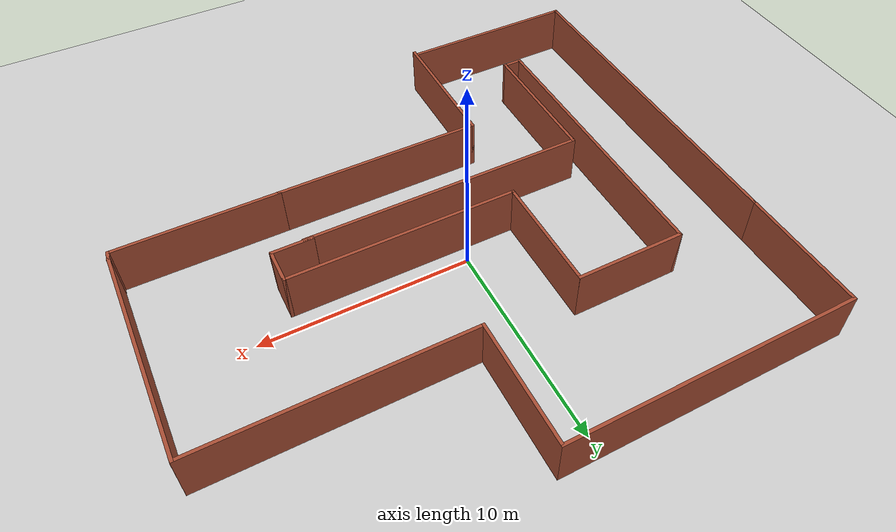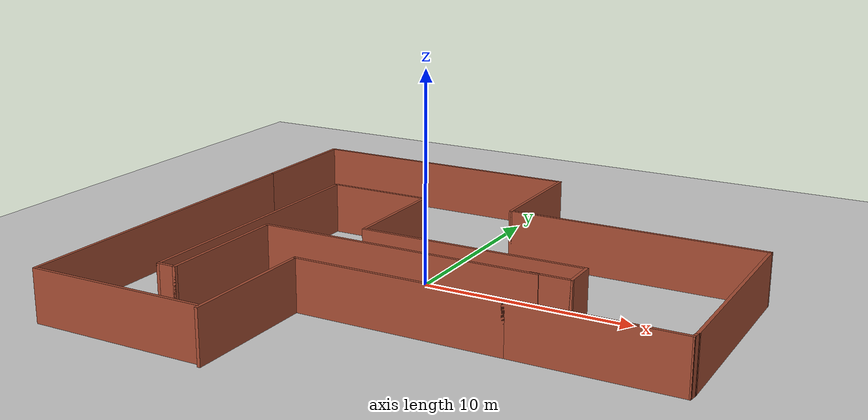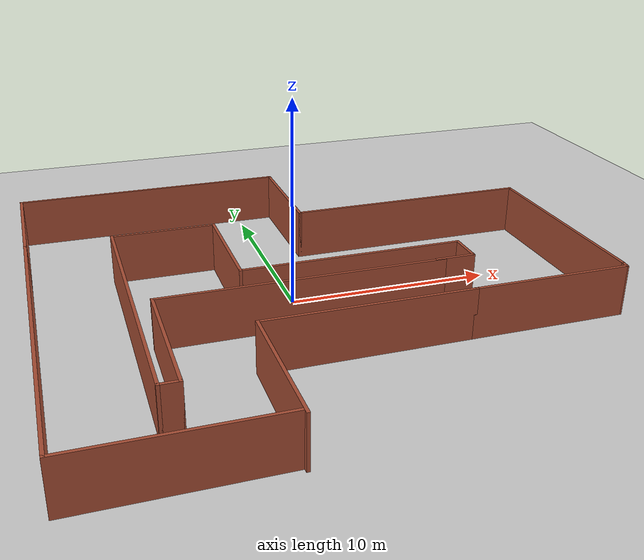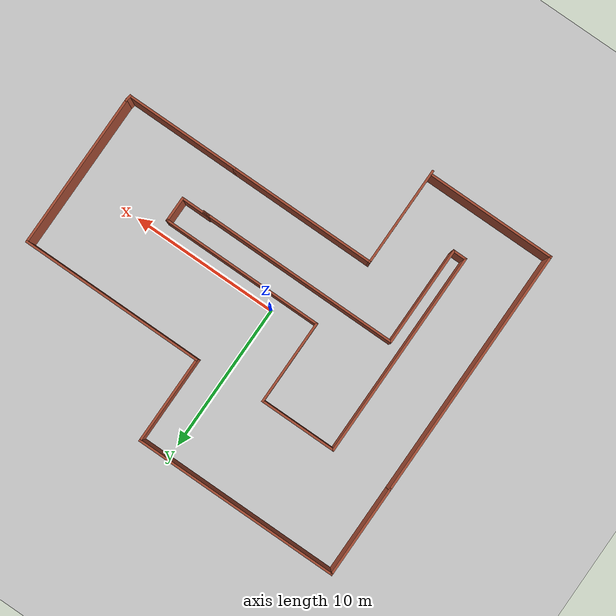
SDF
<sdf version="1.7">
 <world name="default">
  <light name="sun" type="directional">
   <pose>0 0 10 0 -0 0</pose>
   <diffuse>0.8 0.8 0.8 1</diffuse>
   <specular>0.2 0.2 0.2 1</specular>
   <attenuation>
    <range>1000</range>
    <constant>0.9</constant>
    <linear>0.01</linear>
    <quadratic>0.001</quadratic>
   </attenuation>
   <direction>-0.5 0.1 -0.9</direction>
   <spot><inner_angle>0</inner_angle><outer_angle>0</outer_angle><falloff>0</falloff></spot>
  </light>
  <model name="ground_plane">
   <static>1</static>
   <link name="link">
    <collision name="collision">
     <geometry><plane><normal>0 0 1</normal><size>100 100</size></plane></geometry>
     <surface><friction><ode><mu>100</mu><mu2>50</mu2></ode></friction></surface>
    </collision>
    <visual name="visual">
     <cast_shadows>0</cast_shadows>
     <geometry><plane><normal>0 0 1</normal><size>100 100</size></plane></geometry>
     <material>
      <script><uri>file://media/materials/scripts/gazebo.material</uri><name>Gazebo/Grey</name></script>
     </material>
    </visual>
   </link>
  </model>
  <gravity>0 0 -9.8</gravity>
  <magnetic_field>6e-06 2.3e-05 -4.2e-05</magnetic_field>
  <atmosphere type="adiabatic"/>
  <physics type="ode">
   <max_step_size>0.001</max_step_size>
   <real_time_factor>1</real_time_factor>
   <real_time_update_rate>1000</real_time_update_rate>
  </physics>
  <scene><ambient>0.4 0.4 0.4 1</ambient><background>0.7 0.7 0.7 1</background><shadows>1</shadows></scene>
  <audio><device>default</device></audio>
  <spherical_coordinates>
   <surface_model>EARTH_WGS84</surface_model>
   <latitude_deg>0</latitude_deg>
   <longitude_deg>0</longitude_deg>
   <elevation>0</elevation>
   <heading_deg>0</heading_deg>
  </spherical_coordinates>
  <model name="lobbyv5">
   <pose>1.16769 -0.714754 0 0 -0 0</pose>
   <link name="Wall_12">
    <collision name="Wall_12_Collision">
     <geometry><box><size>13.75 0.15 2.5</size></box></geometry>
     <pose>0 0 1.25 0 -0 0</pose>
    </collision>
    <visual name="Wall_12_Visual">
     <pose>0 0 1.25 0 -0 0</pose>
     <geometry><box><size>13.75 0.15 2.5</size></box></geometry>
     <material>
      <script><uri>file://media/materials/scripts/gazebo.material</uri><name>Gazebo/Bricks</name></script>
      <ambient>1 1 1 1</ambient>
     </material>
     <meta><layer>0</layer></meta>
    </visual>
    <pose>-1.35508 -1.76925 0 0 -0 3.14159</pose>
   </link>
   <link name="Wall_13">
    <collision name="Wall_13_Collision">
     <geometry><box><size>6.75 0.15 2.5</size></box></geometry>
     <pose>0 0 1.25 0 -0 0</pose>
    </collision>
    <visual name="Wall_13_Visual">
     <pose>0 0 1.25 0 -0 0</pose>
     <geometry><box><size>6.75 0.15 2.5</size></box></geometry>
     <material>
      <script><uri>file://media/materials/scripts/gazebo.material</uri><name>Gazebo/Bricks</name></script>
      <ambient>1 1 1 1</ambient>
     </material>
     <meta><layer>0</layer></meta>
    </visual>
    <pose>-8.15508 -5.06925 0 0 -0 -1.5708</pose>
   </link>
   <link name="Wall_17">
    <collision name="Wall_17_Collision">
     <geometry><box><size>1 0.15 2.5</size></box></geometry>
     <pose>0 0 1.25 0 -0 0</pose>
    </collision>
    <visual name="Wall_17_Visual">
     <pose>0 0 1.25 0 -0 0</pose>
     <geometry><box><size>1 0.15 2.5</size></box></geometry>
     <material>
      <script><uri>file://media/materials/scripts/gazebo.material</uri><name>Gazebo/Bricks</name></script>
      <ambient>1 1 1 1</ambient>
     </material>
     <meta><layer>0</layer></meta>
    </visual>
    <pose>-8.58008 -8.36925 0 0 -0 3.14159</pose>
   </link>
   <link name="Wall_18">
    <collision name="Wall_18_Collision">
     <geometry><box><size>14 0.15 2.5</size></box></geometry>
     <pose>0 0 1.25 0 -0 0</pose>
    </collision>
    <visual name="Wall_18_Visual">
     <pose>0 0 1.25 0 -0 0</pose>
     <geometry><box><size>14 0.15 2.5</size></box></geometry>
     <material>
      <script><uri>file://media/materials/scripts/gazebo.material</uri><name>Gazebo/Bricks</name></script>
      <ambient>1 1 1 1</ambient>
     </material>
     <meta><layer>0</layer></meta>
    </visual>
    <pose>-9.00508 -1.44425 0 0 -0 1.5708</pose>
   </link>
   <link name="Wall_20">
    <collision name="Wall_20_Collision">
     <geometry><box><size>17 0.15 2.5</size></box></geometry>
     <pose>0 0 1.25 0 -0 0</pose>
    </collision>
    <visual name="Wall_20_Visual">
     <pose>0 0 1.25 0 -0 0</pose>
     <geometry><box><size>17 0.15 2.5</size></box></geometry>
     <material>
      <script><uri>file://media/materials/scripts/gazebo.material</uri><name>Gazebo/Bricks</name></script>
      <ambient>1 1 1 1</ambient>
     </material>
     <meta><layer>0</layer></meta>
    </visual>
    <pose>-13.1051 -2.95575 0 0 -0 -1.5708</pose>
   </link>
   <link name="Wall_24">
    <collision name="Wall_24_Collision">
     <geometry><box><size>8.75 0.15 2.5</size></box></geometry>
     <pose>0 0 1.25 0 -0 0</pose>
    </collision>
    <visual name="Wall_24_Visual">
     <pose>0 0 1.25 0 -0 0</pose>
     <geometry><box><size>8.75 0.15 2.5</size></box></geometry>
     <material>
      <script><uri>file://media/materials/scripts/gazebo.material</uri><name>Gazebo/Bricks</name></script>
      <ambient>1 1 1 1</ambient>
     </material>
     <meta><layer>0</layer></meta>
    </visual>
    <pose>-8.80508 -11.3808 0 0 -0 0</pose>
   </link>
   <link name="Wall_28">
    <collision name="Wall_28_Collision">
     <geometry><box><size>6.25 0.15 2.5</size></box></geometry>
     <pose>0 0 1.25 0 -0 0</pose>
    </collision>
    <visual name="Wall_28_Visual">
     <pose>0 0 1.25 0 -0 0</pose>
     <geometry><box><size>6.25 0.15 2.5</size></box></geometry>
     <material>
      <script><uri>file://media/materials/scripts/gazebo.material</uri><name>Gazebo/Bricks</name></script>
      <ambient>1 1 1 1</ambient>
     </material>
     <meta><layer>0</layer></meta>
    </visual>
    <pose>-13.1051 8.51925 0 0 -0 1.5708</pose>
   </link>
   <link name="Wall_29">
    <collision name="Wall_29_Collision">
     <geometry><box><size>14 0.15 2.5</size></box></geometry>
     <pose>0 0 1.25 0 -0 0</pose>
    </collision>
    <visual name="Wall_29_Visual">
     <pose>0 0 1.25 0 -0 0</pose>
     <geometry><box><size>14 0.15 2.5</size></box></geometry>
     <material>
      <script><uri>file://media/materials/scripts/gazebo.material</uri><name>Gazebo/Bricks</name></script>
      <ambient>1 1 1 1</ambient>
     </material>
     <meta><layer>0</layer></meta>
    </visual>
    <pose>-6.18008 11.5693 0 0 -0 0</pose>
   </link>
   <link name="Wall_35">
    <collision name="Wall_35_Collision">
     <geometry><box><size>6 0.15 2.5</size></box></geometry>
     <pose>0 0 1.25 0 -0 0</pose>
    </collision>
    <visual name="Wall_35_Visual">
     <pose>0 0 1.25 0 -0 0</pose>
     <geometry><box><size>6 0.15 2.5</size></box></geometry>
     <material>
      <script><uri>file://media/materials/scripts/gazebo.material</uri><name>Gazebo/Bricks</name></script>
      <ambient>1 1 1 1</ambient>
     </material>
     <meta><layer>0</layer></meta>
    </visual>
    <pose>0.744924 8.64425 0 0 -0 -1.5708</pose>
   </link>
   <link name="Wall_36">
    <collision name="Wall_36_Collision">
     <geometry><box><size>12.5 0.15 2.5</size></box></geometry>
     <pose>0 0 1.25 0 -0 0</pose>
    </collision>
    <visual name="Wall_36_Visual">
     <pose>0 0 1.25 0 -0 0</pose>
     <geometry><box><size>12.5 0.15 2.5</size></box></geometry>
     <material>
      <script><uri>file://media/materials/scripts/gazebo.material</uri><name>Gazebo/Bricks</name></script>
      <ambient>1 1 1 1</ambient>
     </material>
     <meta><layer>0</layer></meta>
    </visual>
    <pose>6.91992 5.71925 0 0 -0 0</pose>
   </link>
   <link name="Wall_37">
    <collision name="Wall_37_Collision">
     <geometry><box><size>10.5 0.15 2.5</size></box></geometry>
     <pose>0 0 1.25 0 -0 0</pose>
    </collision>
    <visual name="Wall_37_Visual">
     <pose>0 0 1.25 0 -0 0</pose>
     <geometry><box><size>10.5 0.15 2.5</size></box></geometry>
     <material>
      <script><uri>file://media/materials/scripts/gazebo.material</uri><name>Gazebo/Bricks</name></script>
      <ambient>1 1 1 1</ambient>
     </material>
     <meta><layer>0</layer></meta>
    </visual>
    <pose>13.0949 0.544249 0 0 -0 -1.5708</pose>
   </link>
   <link name="Wall_39">
    <collision name="Wall_39_Collision">
     <geometry><box><size>5.25 0.15 2.5</size></box></geometry>
     <pose>0 0 1.25 0 -0 0</pose>
    </collision>
    <visual name="Wall_39_Visual">
     <pose>0 0 1.25 0 -0 0</pose>
     <geometry><box><size>5.25 0.15 2.5</size></box></geometry>
     <material>
      <script><uri>file://media/materials/scripts/gazebo.material</uri><name>Gazebo/Bricks</name></script>
      <ambient>1 1 1 1</ambient>
     </material>
     <meta><layer>0</layer></meta>
    </visual>
    <pose>-6.45508 5.48075 0 0 -0 0</pose>
   </link>
   <link name="Wall_40">
    <collision name="Wall_40_Collision">
     <geometry><box><size>5.75 0.15 2.5</size></box></geometry>
     <pose>0 0 1.25 0 -0 0</pose>
    </collision>
    <visual name="Wall_40_Visual">
     <pose>0 0 1.25 0 -0 0</pose>
     <geometry><box><size>5.75 0.15 2.5</size></box></geometry>
     <material>
      <script><uri>file://media/materials/scripts/gazebo.material</uri><name>Gazebo/Bricks</name></script>
      <ambient>1 1 1 1</ambient>
     </material>
     <meta><layer>0</layer></meta>
    </visual>
    <pose>-3.90508 2.68075 0 0 -0 -1.5708</pose>
   </link>
   <link name="Wall_41">
    <collision name="Wall_41_Collision">
     <geometry><box><size>11 0.15 2.5</size></box></geometry>
     <pose>0 0 1.25 0 -0 0</pose>
    </collision>
    <visual name="Wall_41_Visual">
     <pose>0 0 1.25 0 -0 0</pose>
     <geometry><box><size>11 0.15 2.5</size></box></geometry>
     <material>
      <script><uri>file://media/materials/scripts/gazebo.material</uri><name>Gazebo/Bricks</name></script>
      <ambient>1 1 1 1</ambient>
     </material>
     <meta><layer>0</layer></meta>
    </visual>
    <pose>1.51992 -0.11925 0 0 -0 0</pose>
   </link>
   <link name="Wall_42">
    <collision name="Wall_42_Collision">
     <geometry><box><size>1.75 0.15 2.5</size></box></geometry>
     <pose>0 0 1.25 0 -0 0</pose>
    </collision>
    <visual name="Wall_42_Visual">
     <pose>0 0 1.25 0 -0 0</pose>
     <geometry><box><size>1.75 0.15 2.5</size></box></geometry>
     <material>
      <script><uri>file://media/materials/scripts/gazebo.material</uri><name>Gazebo/Bricks</name></script>
      <ambient>1 1 1 1</ambient>
     </material>
     <meta><layer>0</layer></meta>
    </visual>
    <pose>6.94492 -0.919251 0 0 -0 -1.5708</pose>
   </link>
   <link name="Wall_43">
    <collision name="Wall_43_Collision">
     <geometry><box><size>2 0.15 2.5</size></box></geometry>
     <pose>0 0 1.25 0 -0 0</pose>
    </collision>
    <visual name="Wall_43_Visual">
     <pose>0 0 1.25 0 -0 0</pose>
     <geometry><box><size>2 0.15 2.5</size></box></geometry>
     <material>
      <script><uri>file://media/materials/scripts/gazebo.material</uri><name>Gazebo/Bricks</name></script>
      <ambient>1 1 1 1</ambient>
     </material>
     <meta><layer>0</layer></meta>
    </visual>
    <pose>6.01992 -1.71925 0 0 -0 3.14159</pose>
   </link>
   <link name="Wall_45">
    <collision name="Wall_45_Collision">
     <geometry><box><size>7.75 0.15 2.5</size></box></geometry>
     <pose>0 0 1.25 0 -0 0</pose>
    </collision>
    <visual name="Wall_45_Visual">
     <pose>0 0 1.25 0 -0 0</pose>
     <geometry><box><size>7.75 0.15 2.5</size></box></geometry>
     <material>
      <script><uri>file://media/materials/scripts/gazebo.material</uri><name>Gazebo/Bricks</name></script>
      <ambient>1 1 1 1</ambient>
     </material>
     <meta><layer>0</layer></meta>
    </visual>
    <pose>9.24492 -4.96925 0 0 -0 0</pose>
   </link>
   <link name="Wall_46">
    <collision name="Wall_46_Collision">
     <geometry><box><size>0.492173 0.15 2.5</size></box></geometry>
     <pose>0 0 1.25 0 -0 0</pose>
    </collision>
    <visual name="Wall_46_Visual">
     <pose>0 0 1.25 0 -0 0</pose>
     <geometry><box><size>0.492173 0.15 2.5</size></box></geometry>
     <material>
      <script><uri>file://media/materials/scripts/gazebo.material</uri><name>Gazebo/Bricks</name></script>
      <ambient>1 1 1 1</ambient>
     </material>
     <meta><layer>0</layer></meta>
    </visual>
    <pose>13.0699 -4.8 0 0 -0 1.42415</pose>
   </link>
   <link name="Wall_8">
    <collision name="Wall_8_Collision">
     <geometry><box><size>6.75 0.15 2.5</size></box></geometry>
     <pose>0 0 1.25 0 -0 0</pose>
    </collision>
    <visual name="Wall_8_Visual">
     <pose>0 0 1.25 0 -0 0</pose>
     <geometry><box><size>6.75 0.15 2.5</size></box></geometry>
     <material>
      <script><uri>file://media/materials/scripts/gazebo.material</uri><name>Gazebo/Bricks</name></script>
      <ambient>1 1 1 1</ambient>
     </material>
     <meta><layer>0</layer></meta>
    </visual>
    <pose>-4.40508 -8.26925 0 0 -0 1.5708</pose>
   </link>
   <link name="Wall_9">
    <collision name="Wall_9_Collision">
     <geometry><box><size>10 0.15 2.5</size></box></geometry>
     <pose>0 0 1.25 0 -0 0</pose>
    </collision>
    <visual name="Wall_9_Visual">
     <pose>0 0 1.25 0 -0 0</pose>
     <geometry><box><size>10 0.15 2.5</size></box></geometry>
     <material>
      <script><uri>file://media/materials/scripts/gazebo.material</uri><name>Gazebo/Bricks</name></script>
      <ambient>1 1 1 1</ambient>
     </material>
     <meta><layer>0</layer></meta>
    </visual>
    <pose>0.519923 -4.96925 0 0 -0 0</pose>
   </link>
   <static>1</static>
  </model>
 </world>
</sdf>
